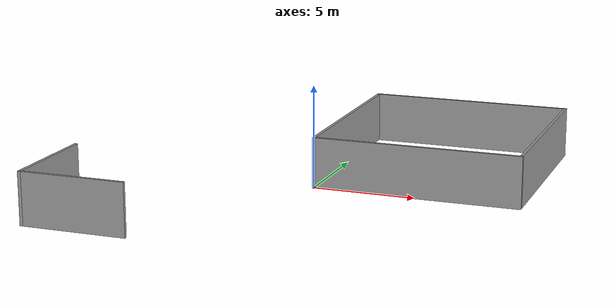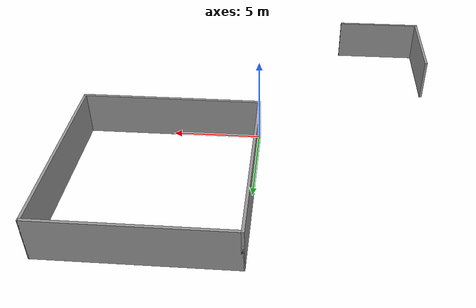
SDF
<?xml version='1.0'?>
<sdf version='1.6'>
  <model name='room2'>
    <pose frame=''>0 0 0 0 -0 0</pose>
    <link name='Wall_0'>
      <collision name='Wall_0_Collision'>
        <geometry>
          <box>
            <size>10.15 0.15 2.5</size>
          </box>
        </geometry>
        <pose frame=''>0 0 1.25 0 -0 0</pose>
      </collision>
      <visual name='Wall_0_Visual'>
        <pose frame=''>0 0 1.25 0 -0 0</pose>
        <geometry>
          <box>
            <size>10.15 0.15 2.5</size>
          </box>
        </geometry>
        <material>
          <script>
            <uri>file://media/materials/scripts/gazebo.material</uri>
            <name>Gazebo/Grey</name>
          </script>
          <ambient>1 1 1 1</ambient>
        </material>
      </visual>
      <pose frame=''>5 0 0 0 -0 0</pose>
    </link>
    <link name='Wall_12'>
      <collision name='Wall_12_Collision'>
        <geometry>
          <box>
            <size>5.15 0.15 2.5</size>
          </box>
        </geometry>
        <pose frame=''>0 0 1.25 0 -0 0</pose>
      </collision>
      <visual name='Wall_12_Visual'>
        <pose frame=''>0 0 1.25 0 -0 0</pose>
        <geometry>
          <box>
            <size>5.15 0.15 2.5</size>
          </box>
        </geometry>
        <material>
          <script>
            <uri>file://media/materials/scripts/gazebo.material</uri>
            <name>Gazebo/Grey</name>
          </script>
          <ambient>1 1 1 1</ambient>
        </material>
      </visual>
      <pose frame=''>-7.5 -10 0 0 -0 0</pose>
    </link>
    <link name='Wall_14'>
      <collision name='Wall_14_Collision'>
        <geometry>
          <box>
            <size>5.15 0.15 2.5</size>
          </box>
        </geometry>
        <pose frame=''>0 0 1.25 0 -0 0</pose>
      </collision>
      <visual name='Wall_14_Visual'>
        <pose frame=''>0 0 1.25 0 -0 0</pose>
        <geometry>
          <box>
            <size>5.15 0.15 2.5</size>
          </box>
        </geometry>
        <material>
          <script>
            <uri>file://media/materials/scripts/gazebo.material</uri>
            <name>Gazebo/Grey</name>
          </script>
          <ambient>1 1 1 1</ambient>
        </material>
      </visual>
      <pose frame=''>-10 -7.5 0 0 -0 1.5708</pose>
    </link>
    <link name='Wall_2'>
      <collision name='Wall_2_Collision'>
        <geometry>
          <box>
            <size>10.15 0.15 2.5</size>
          </box>
        </geometry>
        <pose frame=''>0 0 1.25 0 -0 0</pose>
      </collision>
      <visual name='Wall_2_Visual'>
        <pose frame=''>0 0 1.25 0 -0 0</pose>
        <geometry>
          <box>
            <size>10.15 0.15 2.5</size>
          </box>
        </geometry>
        <material>
          <script>
            <uri>file://media/materials/scripts/gazebo.material</uri>
            <name>Gazebo/Grey</name>
          </script>
          <ambient>1 1 1 1</ambient>
        </material>
      </visual>
      <pose frame=''>0 5 0 0 -0 1.5708</pose>
    </link>
    <link name='Wall_3'>
      <collision name='Wall_3_Collision'>
        <geometry>
          <box>
            <size>10.15 0.15 2.5</size>
          </box>
        </geometry>
        <pose frame=''>0 0 1.25 0 -0 0</pose>
      </collision>
      <visual name='Wall_3_Visual'>
        <pose frame=''>0 0 1.25 0 -0 0</pose>
        <geometry>
          <box>
            <size>10.15 0.15 2.5</size>
          </box>
        </geometry>
        <material>
          <script>
            <uri>file://media/materials/scripts/gazebo.material</uri>
            <name>Gazebo/Grey</name>
          </script>
          <ambient>1 1 1 1</ambient>
        </material>
      </visual>
      <pose frame=''>5 10 0 0 -0 0</pose>
    </link>
    <link name='Wall_4'>
      <collision name='Wall_4_Collision'>
        <geometry>
          <box>
            <size>10.15 0.15 2.5</size>
          </box>
        </geometry>
        <pose frame=''>0 0 1.25 0 -0 0</pose>
      </collision>
      <visual name='Wall_4_Visual'>
        <pose frame=''>0 0 1.25 0 -0 0</pose>
        <geometry>
          <box>
            <size>10.15 0.15 2.5</size>
          </box>
        </geometry>
        <material>
          <script>
            <uri>file://media/materials/scripts/gazebo.material</uri>
            <name>Gazebo/Grey</name>
          </script>
          <ambient>1 1 1 1</ambient>
        </material>
      </visual>
      <pose frame=''>10 5 0 0 0 -1.5708</pose>
    </link>
    <static>1</static>
  </model>
</sdf>
